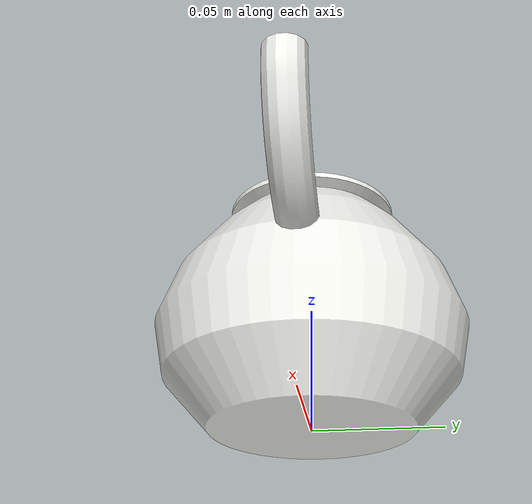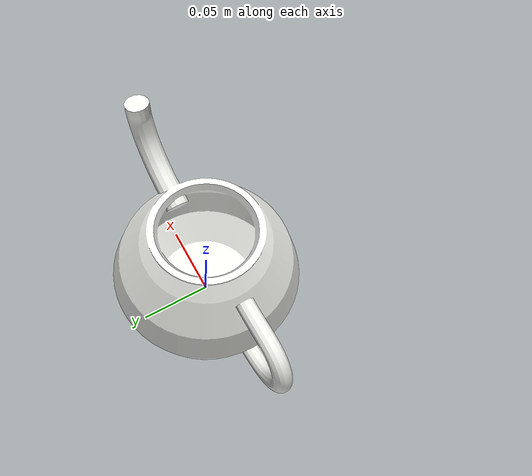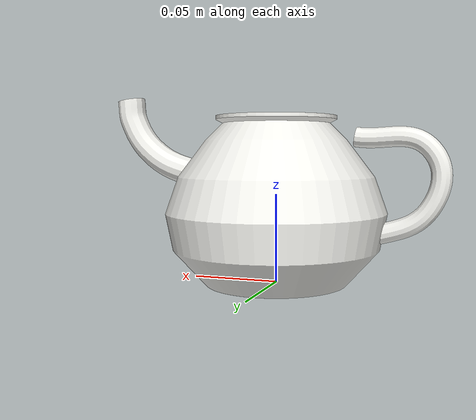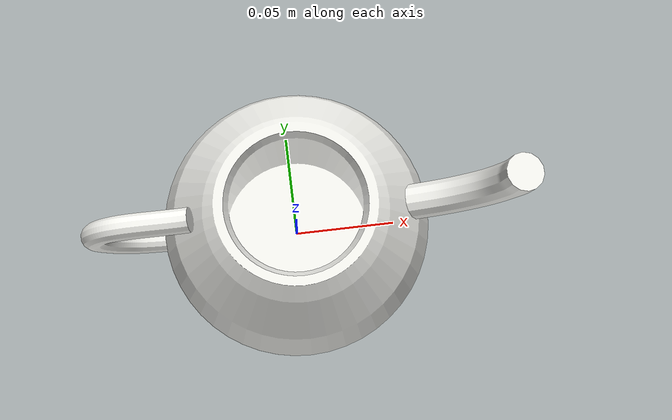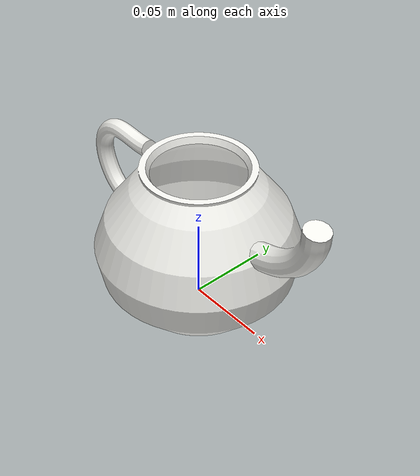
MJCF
<mujoco model="Teapot">
  <default>
    <default class="visual">
      <geom group="2" type="mesh" contype="0" conaffinity="0"/>
    </default>
    <default class="collision">
      <geom group="3" type="mesh"/>
    </default>
  </default>
  <asset>
    <material name="Porcelain_White" specular="0.5" shininess="0.672400024" rgba="0.940000 0.940000 0.920000 1.000000"/>
    <mesh file="Teapot.obj"/>
    <mesh file="Teapot_collision_0.obj"/>
    <mesh file="Teapot_collision_1.obj"/>
    <mesh file="Teapot_collision_2.obj"/>
    <mesh file="Teapot_collision_3.obj"/>
    <mesh file="Teapot_collision_4.obj"/>
    <mesh file="Teapot_collision_5.obj"/>
    <mesh file="Teapot_collision_6.obj"/>
    <mesh file="Teapot_collision_7.obj"/>
    <mesh file="Teapot_collision_8.obj"/>
    <mesh file="Teapot_collision_9.obj"/>
    <mesh file="Teapot_collision_10.obj"/>
    <mesh file="Teapot_collision_11.obj"/>
    <mesh file="Teapot_collision_12.obj"/>
    <mesh file="Teapot_collision_13.obj"/>
    <mesh file="Teapot_collision_14.obj"/>
    <mesh file="Teapot_collision_15.obj"/>
  </asset>
  <worldbody>
    <body name="Teapot">
      <geom material="Porcelain_White" mesh="Teapot" class="visual"/>
      <geom mesh="Teapot_collision_0" rgba="0.8248325591377424 0.22491006440429295 0.3281854542306861 1" class="collision"/>
      <geom mesh="Teapot_collision_1" rgba="0.23759766570635354 0.8296301728944272 0.23142253047924877 1" class="collision"/>
      <geom mesh="Teapot_collision_2" rgba="0.1380915465228828 0.9970146793147767 0.14289446132172134 1" class="collision"/>
      <geom mesh="Teapot_collision_3" rgba="0.6022818113145653 0.709670106992824 0.7072488205481425 1" class="collision"/>
      <geom mesh="Teapot_collision_4" rgba="0.6037382684604286 0.9604472403354439 0.05261042739128852 1" class="collision"/>
      <geom mesh="Teapot_collision_5" rgba="0.3856857554542077 0.17070014554888868 0.5341139353204748 1" class="collision"/>
      <geom mesh="Teapot_collision_6" rgba="0.8704898466989754 0.2381163043096578 0.7659301555384962 1" class="collision"/>
      <geom mesh="Teapot_collision_7" rgba="0.7915652314151813 0.16522751996789442 0.7588060747421529 1" class="collision"/>
      <geom mesh="Teapot_collision_8" rgba="0.5811480735436665 0.1459586320757803 0.49404702392641286 1" class="collision"/>
      <geom mesh="Teapot_collision_9" rgba="0.5717514308545673 0.7396784940167744 0.7859394792331884 1" class="collision"/>
      <geom mesh="Teapot_collision_10" rgba="0.9326520912716335 0.680859498086214 0.6187915671049019 1" class="collision"/>
      <geom mesh="Teapot_collision_11" rgba="0.08072105415899322 0.18151246981986846 0.9992610634383163 1" class="collision"/>
      <geom mesh="Teapot_collision_12" rgba="0.9674238109999446 0.6174990515525984 0.44563111206676653 1" class="collision"/>
      <geom mesh="Teapot_collision_13" rgba="0.6002243296842326 0.8437367323466586 0.622581404836276 1" class="collision"/>
      <geom mesh="Teapot_collision_14" rgba="0.19928901111278718 0.6025466084003627 0.5411962178897533 1" class="collision"/>
      <geom mesh="Teapot_collision_15" rgba="0.045550754717051944 0.6921919496405635 0.3276005816204054 1" class="collision"/>
    </body>
  </worldbody>
</mujoco>
